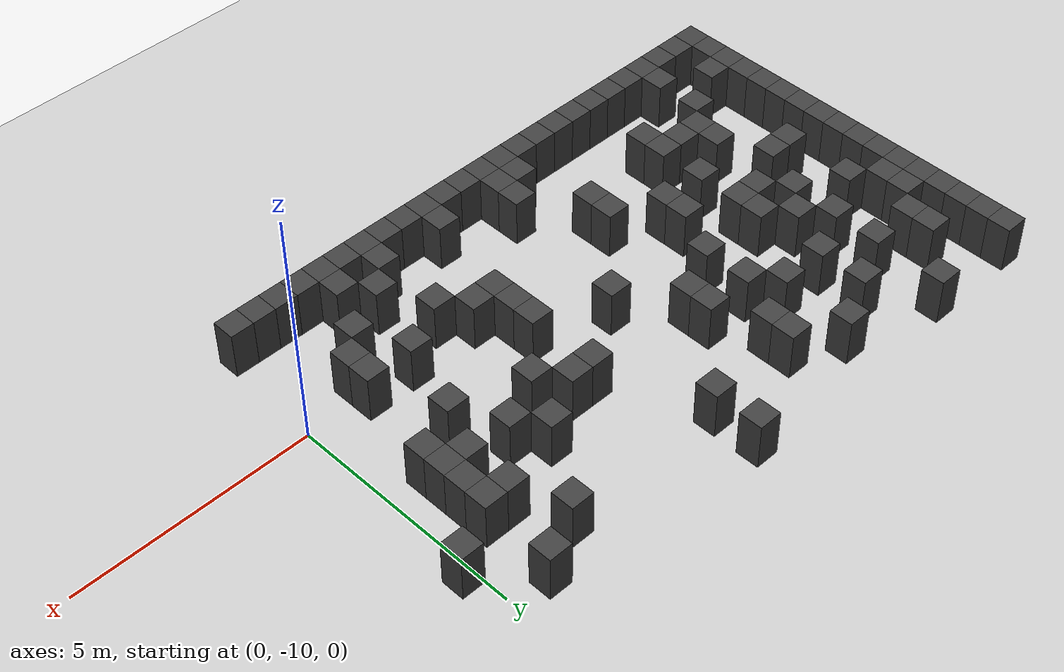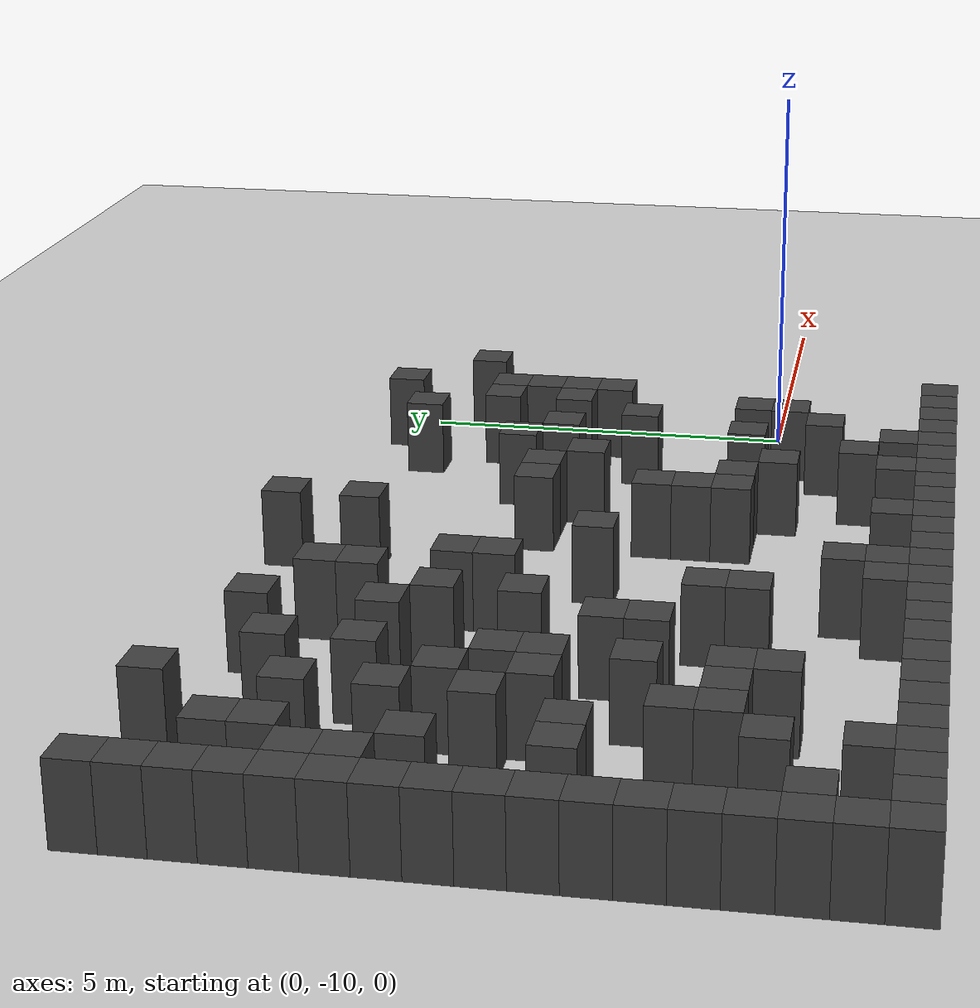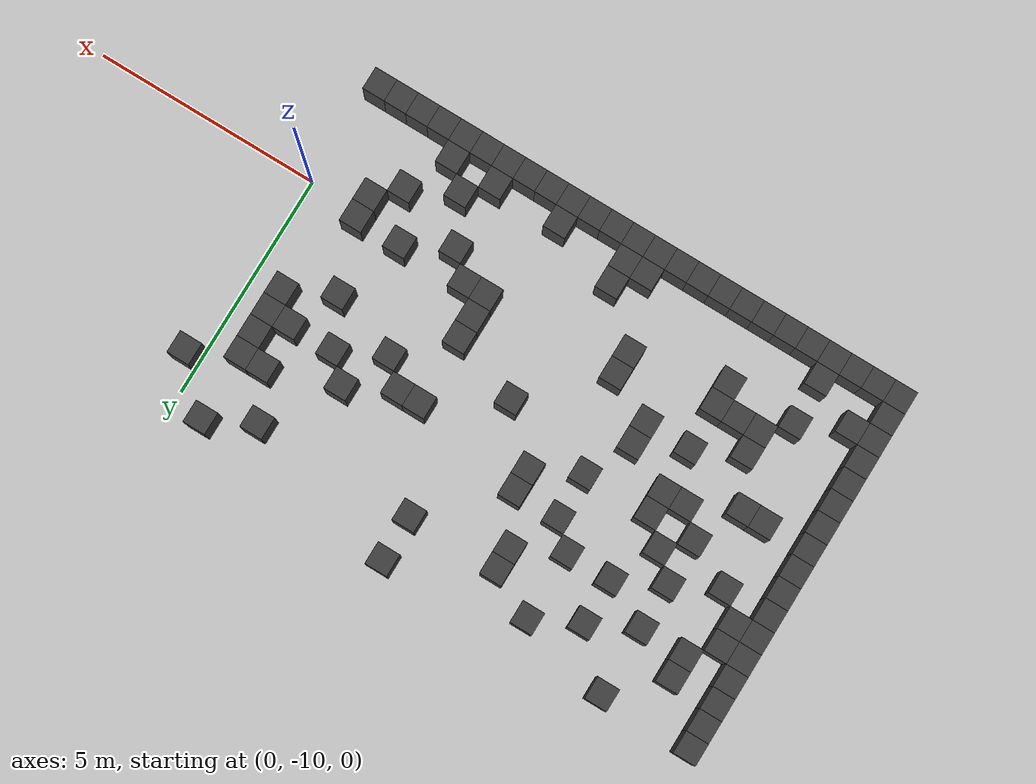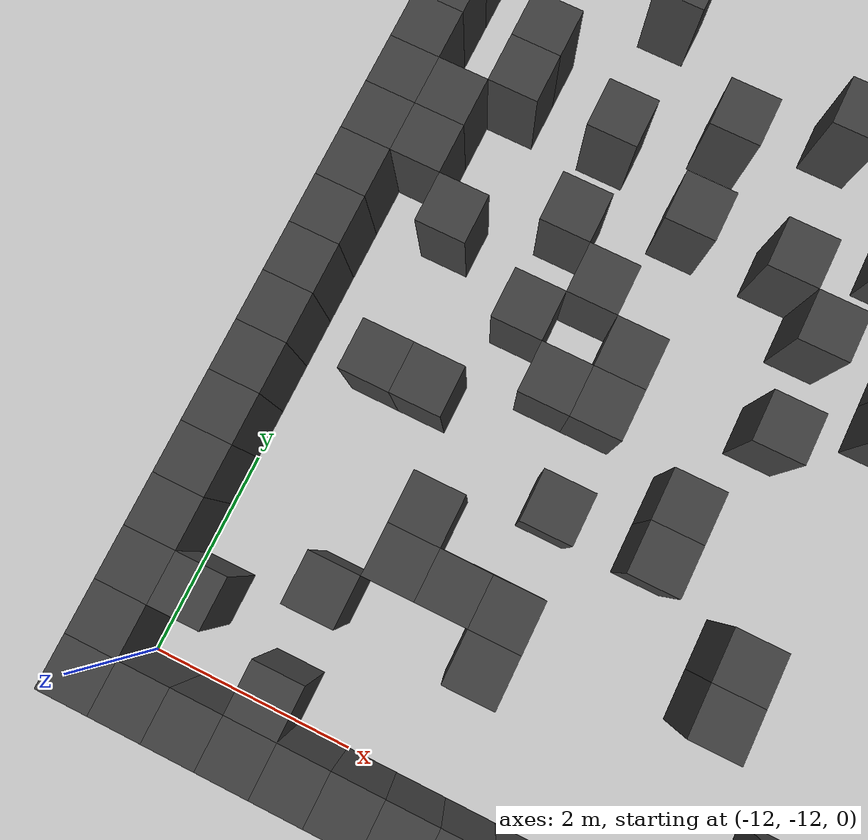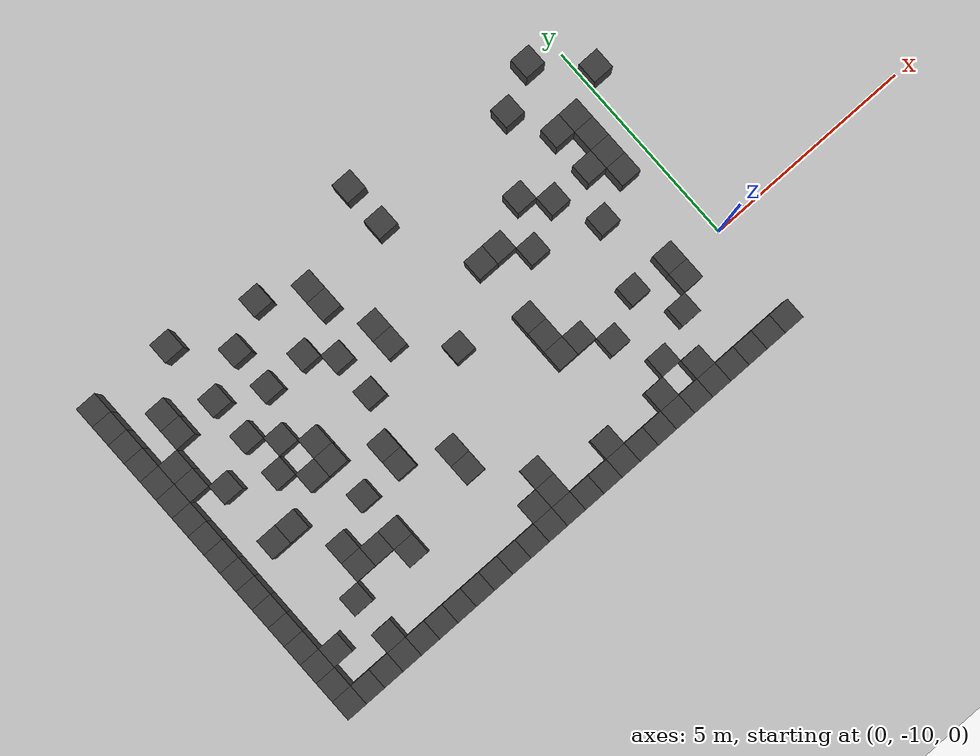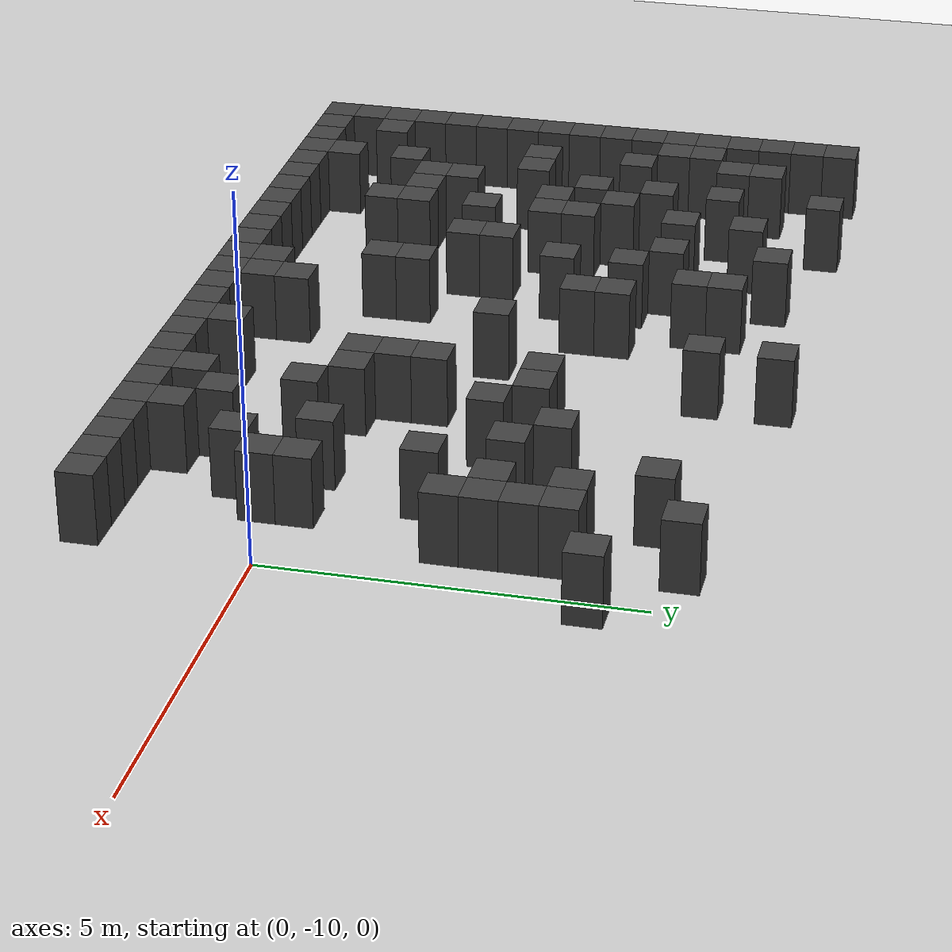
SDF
<sdf version="1.7">
 <world name="map_4390">
  <model name="ground_plane">
   <static>true</static>
   <link name="link">
    <collision name="collision">
     <geometry><plane><normal>0 0 1</normal><size>200 200</size></plane></geometry>
    </collision>
    <visual name="visual">
     <geometry><plane><normal>0 0 1</normal><size>200 200</size></plane></geometry>
     <material><ambient>0.8 0.8 0.8 1</ambient><diffuse>0.8 0.8 0.8 1</diffuse></material>
    </visual>
   </link>
  </model>
  <model name="maze_environment">
   <static>true</static>
   <link name="wall_431">
    <pose>-12.250 -4.250 0.500 0 0 0</pose>
    <collision name="col"><geometry><box><size>0.5 0.5 1.0</size></box></geometry></collision>
    <visual name="vis">
     <geometry><box><size>0.5 0.5 1.0</size></box></geometry>
     <material><ambient>0.15 0.15 0.15 1</ambient><diffuse>0.25 0.25 0.25 1</diffuse></material>
    </visual>
   </link>
   <link name="wall_432">
    <pose>-10.250 -4.250 0.500 0 0 0</pose>
    <collision name="col"><geometry><box><size>0.5 0.5 1.0</size></box></geometry></collision>
    <visual name="vis">
     <geometry><box><size>0.5 0.5 1.0</size></box></geometry>
     <material><ambient>0.15 0.15 0.15 1</ambient><diffuse>0.25 0.25 0.25 1</diffuse></material>
    </visual>
   </link>
   <link name="wall_433">
    <pose>-5.250 -4.250 0.500 0 0 0</pose>
    <collision name="col"><geometry><box><size>0.5 0.5 1.0</size></box></geometry></collision>
    <visual name="vis">
     <geometry><box><size>0.5 0.5 1.0</size></box></geometry>
     <material><ambient>0.15 0.15 0.15 1</ambient><diffuse>0.25 0.25 0.25 1</diffuse></material>
    </visual>
   </link>
   <link name="wall_446">
    <pose>-12.250 -4.750 0.500 0 0 0</pose>
    <collision name="col"><geometry><box><size>0.5 0.5 1.0</size></box></geometry></collision>
    <visual name="vis">
     <geometry><box><size>0.5 0.5 1.0</size></box></geometry>
     <material><ambient>0.15 0.15 0.15 1</ambient><diffuse>0.25 0.25 0.25 1</diffuse></material>
    </visual>
   </link>
   <link name="wall_447">
    <pose>-8.250 -4.750 0.500 0 0 0</pose>
    <collision name="col"><geometry><box><size>0.5 0.5 1.0</size></box></geometry></collision>
    <visual name="vis">
     <geometry><box><size>0.5 0.5 1.0</size></box></geometry>
     <material><ambient>0.15 0.15 0.15 1</ambient><diffuse>0.25 0.25 0.25 1</diffuse></material>
    </visual>
   </link>
   <link name="wall_448">
    <pose>-0.750 -4.750 0.500 0 0 0</pose>
    <collision name="col"><geometry><box><size>0.5 0.5 1.0</size></box></geometry></collision>
    <visual name="vis">
     <geometry><box><size>0.5 0.5 1.0</size></box></geometry>
     <material><ambient>0.15 0.15 0.15 1</ambient><diffuse>0.25 0.25 0.25 1</diffuse></material>
    </visual>
   </link>
   <link name="wall_453">
    <pose>-12.250 -5.250 0.500 0 0 0</pose>
    <collision name="col"><geometry><box><size>0.5 0.5 1.0</size></box></geometry></collision>
    <visual name="vis">
     <geometry><box><size>0.5 0.5 1.0</size></box></geometry>
     <material><ambient>0.15 0.15 0.15 1</ambient><diffuse>0.25 0.25 0.25 1</diffuse></material>
    </visual>
   </link>
   <link name="wall_454">
    <pose>-11.250 -5.250 0.500 0 0 0</pose>
    <collision name="col"><geometry><box><size>0.5 0.5 1.0</size></box></geometry></collision>
    <visual name="vis">
     <geometry><box><size>0.5 0.5 1.0</size></box></geometry>
     <material><ambient>0.15 0.15 0.15 1</ambient><diffuse>0.25 0.25 0.25 1</diffuse></material>
    </visual>
   </link>
   <link name="wall_455">
    <pose>-9.250 -5.250 0.500 0 0 0</pose>
    <collision name="col"><geometry><box><size>0.5 0.5 1.0</size></box></geometry></collision>
    <visual name="vis">
     <geometry><box><size>0.5 0.5 1.0</size></box></geometry>
     <material><ambient>0.15 0.15 0.15 1</ambient><diffuse>0.25 0.25 0.25 1</diffuse></material>
    </visual>
   </link>
   <link name="wall_456">
    <pose>-7.250 -5.250 0.500 0 0 0</pose>
    <collision name="col"><geometry><box><size>0.5 0.5 1.0</size></box></geometry></collision>
    <visual name="vis">
     <geometry><box><size>0.5 0.5 1.0</size></box></geometry>
     <material><ambient>0.15 0.15 0.15 1</ambient><diffuse>0.25 0.25 0.25 1</diffuse></material>
    </visual>
   </link>
   <link name="wall_457">
    <pose>-5.250 -5.250 0.500 0 0 0</pose>
    <collision name="col"><geometry><box><size>0.5 0.5 1.0</size></box></geometry></collision>
    <visual name="vis">
     <geometry><box><size>0.5 0.5 1.0</size></box></geometry>
     <material><ambient>0.15 0.15 0.15 1</ambient><diffuse>0.25 0.25 0.25 1</diffuse></material>
    </visual>
   </link>
   <link name="wall_458">
    <pose>-1.750 -5.250 0.500 0 0 0</pose>
    <collision name="col"><geometry><box><size>0.5 0.5 1.0</size></box></geometry></collision>
    <visual name="vis">
     <geometry><box><size>0.5 0.5 1.0</size></box></geometry>
     <material><ambient>0.15 0.15 0.15 1</ambient><diffuse>0.25 0.25 0.25 1</diffuse></material>
    </visual>
   </link>
   <link name="wall_469">
    <pose>-12.250 -5.750 0.500 0 0 0</pose>
    <collision name="col"><geometry><box><size>0.5 0.5 1.0</size></box></geometry></collision>
    <visual name="vis">
     <geometry><box><size>0.5 0.5 1.0</size></box></geometry>
     <material><ambient>0.15 0.15 0.15 1</ambient><diffuse>0.25 0.25 0.25 1</diffuse></material>
    </visual>
   </link>
   <link name="wall_470">
    <pose>-11.250 -5.750 0.500 0 0 0</pose>
    <collision name="col"><geometry><box><size>0.5 0.5 1.0</size></box></geometry></collision>
    <visual name="vis">
     <geometry><box><size>0.5 0.5 1.0</size></box></geometry>
     <material><ambient>0.15 0.15 0.15 1</ambient><diffuse>0.25 0.25 0.25 1</diffuse></material>
    </visual>
   </link>
   <link name="wall_471">
    <pose>-10.250 -5.750 0.500 0 0 0</pose>
    <collision name="col"><geometry><box><size>0.5 0.5 1.0</size></box></geometry></collision>
    <visual name="vis">
     <geometry><box><size>0.5 0.5 1.0</size></box></geometry>
     <material><ambient>0.15 0.15 0.15 1</ambient><diffuse>0.25 0.25 0.25 1</diffuse></material>
    </visual>
   </link>
   <link name="wall_472">
    <pose>-7.250 -5.750 0.500 0 0 0</pose>
    <collision name="col"><geometry><box><size>0.5 0.5 1.0</size></box></geometry></collision>
    <visual name="vis">
     <geometry><box><size>0.5 0.5 1.0</size></box></geometry>
     <material><ambient>0.15 0.15 0.15 1</ambient><diffuse>0.25 0.25 0.25 1</diffuse></material>
    </visual>
   </link>
   <link name="wall_473">
    <pose>0.250 -5.750 0.500 0 0 0</pose>
    <collision name="col"><geometry><box><size>0.5 0.5 1.0</size></box></geometry></collision>
    <visual name="vis">
     <geometry><box><size>0.5 0.5 1.0</size></box></geometry>
     <material><ambient>0.15 0.15 0.15 1</ambient><diffuse>0.25 0.25 0.25 1</diffuse></material>
    </visual>
   </link>
   <link name="wall_480">
    <pose>-12.250 -6.250 0.500 0 0 0</pose>
    <collision name="col"><geometry><box><size>0.5 0.5 1.0</size></box></geometry></collision>
    <visual name="vis">
     <geometry><box><size>0.5 0.5 1.0</size></box></geometry>
     <material><ambient>0.15 0.15 0.15 1</ambient><diffuse>0.25 0.25 0.25 1</diffuse></material>
    </visual>
   </link>
   <link name="wall_481">
    <pose>-11.750 -6.250 0.500 0 0 0</pose>
    <collision name="col"><geometry><box><size>0.5 0.5 1.0</size></box></geometry></collision>
    <visual name="vis">
     <geometry><box><size>0.5 0.5 1.0</size></box></geometry>
     <material><ambient>0.15 0.15 0.15 1</ambient><diffuse>0.25 0.25 0.25 1</diffuse></material>
    </visual>
   </link>
   <link name="wall_482">
    <pose>-9.250 -6.250 0.500 0 0 0</pose>
    <collision name="col"><geometry><box><size>0.5 0.5 1.0</size></box></geometry></collision>
    <visual name="vis">
     <geometry><box><size>0.5 0.5 1.0</size></box></geometry>
     <material><ambient>0.15 0.15 0.15 1</ambient><diffuse>0.25 0.25 0.25 1</diffuse></material>
    </visual>
   </link>
   <link name="wall_483">
    <pose>-8.250 -6.250 0.500 0 0 0</pose>
    <collision name="col"><geometry><box><size>0.5 0.5 1.0</size></box></geometry></collision>
    <visual name="vis">
     <geometry><box><size>0.5 0.5 1.0</size></box></geometry>
     <material><ambient>0.15 0.15 0.15 1</ambient><diffuse>0.25 0.25 0.25 1</diffuse></material>
    </visual>
   </link>
   <link name="wall_484">
    <pose>-1.250 -6.250 0.500 0 0 0</pose>
    <collision name="col"><geometry><box><size>0.5 0.5 1.0</size></box></geometry></collision>
    <visual name="vis">
     <geometry><box><size>0.5 0.5 1.0</size></box></geometry>
     <material><ambient>0.15 0.15 0.15 1</ambient><diffuse>0.25 0.25 0.25 1</diffuse></material>
    </visual>
   </link>
   <link name="wall_485">
    <pose>-0.750 -6.250 0.500 0 0 0</pose>
    <collision name="col"><geometry><box><size>0.5 0.5 1.0</size></box></geometry></collision>
    <visual name="vis">
     <geometry><box><size>0.5 0.5 1.0</size></box></geometry>
     <material><ambient>0.15 0.15 0.15 1</ambient><diffuse>0.25 0.25 0.25 1</diffuse></material>
    </visual>
   </link>
   <link name="wall_494">
    <pose>-12.250 -6.750 0.500 0 0 0</pose>
    <collision name="col"><geometry><box><size>0.5 0.5 1.0</size></box></geometry></collision>
    <visual name="vis">
     <geometry><box><size>0.5 0.5 1.0</size></box></geometry>
     <material><ambient>0.15 0.15 0.15 1</ambient><diffuse>0.25 0.25 0.25 1</diffuse></material>
    </visual>
   </link>
   <link name="wall_495">
    <pose>-11.750 -6.750 0.500 0 0 0</pose>
    <collision name="col"><geometry><box><size>0.5 0.5 1.0</size></box></geometry></collision>
    <visual name="vis">
     <geometry><box><size>0.5 0.5 1.0</size></box></geometry>
     <material><ambient>0.15 0.15 0.15 1</ambient><diffuse>0.25 0.25 0.25 1</diffuse></material>
    </visual>
   </link>
   <link name="wall_496">
    <pose>-10.250 -6.750 0.500 0 0 0</pose>
    <collision name="col"><geometry><box><size>0.5 0.5 1.0</size></box></geometry></collision>
    <visual name="vis">
     <geometry><box><size>0.5 0.5 1.0</size></box></geometry>
     <material><ambient>0.15 0.15 0.15 1</ambient><diffuse>0.25 0.25 0.25 1</diffuse></material>
    </visual>
   </link>
   <link name="wall_497">
    <pose>-7.750 -6.750 0.500 0 0 0</pose>
    <collision name="col"><geometry><box><size>0.5 0.5 1.0</size></box></geometry></collision>
    <visual name="vis">
     <geometry><box><size>0.5 0.5 1.0</size></box></geometry>
     <material><ambient>0.15 0.15 0.15 1</ambient><diffuse>0.25 0.25 0.25 1</diffuse></material>
    </visual>
   </link>
   <link name="wall_498">
    <pose>-6.750 -6.750 0.500 0 0 0</pose>
    <collision name="col"><geometry><box><size>0.5 0.5 1.0</size></box></geometry></collision>
    <visual name="vis">
     <geometry><box><size>0.5 0.5 1.0</size></box></geometry>
     <material><ambient>0.15 0.15 0.15 1</ambient><diffuse>0.25 0.25 0.25 1</diffuse></material>
    </visual>
   </link>
   <link name="wall_499">
    <pose>-2.750 -6.750 0.500 0 0 0</pose>
    <collision name="col"><geometry><box><size>0.5 0.5 1.0</size></box></geometry></collision>
    <visual name="vis">
     <geometry><box><size>0.5 0.5 1.0</size></box></geometry>
     <material><ambient>0.15 0.15 0.15 1</ambient><diffuse>0.25 0.25 0.25 1</diffuse></material>
    </visual>
   </link>
   <link name="wall_500">
    <pose>-0.750 -6.750 0.500 0 0 0</pose>
    <collision name="col"><geometry><box><size>0.5 0.5 1.0</size></box></geometry></collision>
    <visual name="vis">
     <geometry><box><size>0.5 0.5 1.0</size></box></geometry>
     <material><ambient>0.15 0.15 0.15 1</ambient><diffuse>0.25 0.25 0.25 1</diffuse></material>
    </visual>
   </link>
   <link name="wall_507">
    <pose>-12.250 -7.250 0.500 0 0 0</pose>
    <collision name="col"><geometry><box><size>0.5 0.5 1.0</size></box></geometry></collision>
    <visual name="vis">
     <geometry><box><size>0.5 0.5 1.0</size></box></geometry>
     <material><ambient>0.15 0.15 0.15 1</ambient><diffuse>0.25 0.25 0.25 1</diffuse></material>
    </visual>
   </link>
   <link name="wall_508">
    <pose>-11.250 -7.250 0.500 0 0 0</pose>
    <collision name="col"><geometry><box><size>0.5 0.5 1.0</size></box></geometry></collision>
    <visual name="vis">
     <geometry><box><size>0.5 0.5 1.0</size></box></geometry>
     <material><ambient>0.15 0.15 0.15 1</ambient><diffuse>0.25 0.25 0.25 1</diffuse></material>
    </visual>
   </link>
   <link name="wall_509">
    <pose>-9.750 -7.250 0.500 0 0 0</pose>
    <collision name="col"><geometry><box><size>0.5 0.5 1.0</size></box></geometry></collision>
    <visual name="vis">
     <geometry><box><size>0.5 0.5 1.0</size></box></geometry>
     <material><ambient>0.15 0.15 0.15 1</ambient><diffuse>0.25 0.25 0.25 1</diffuse></material>
    </visual>
   </link>
   <link name="wall_510">
    <pose>-6.750 -7.250 0.500 0 0 0</pose>
    <collision name="col"><geometry><box><size>0.5 0.5 1.0</size></box></geometry></collision>
    <visual name="vis">
     <geometry><box><size>0.5 0.5 1.0</size></box></geometry>
     <material><ambient>0.15 0.15 0.15 1</ambient><diffuse>0.25 0.25 0.25 1</diffuse></material>
    </visual>
   </link>
   <link name="wall_511">
    <pose>-4.250 -7.250 0.500 0 0 0</pose>
    <collision name="col"><geometry><box><size>0.5 0.5 1.0</size></box></geometry></collision>
    <visual name="vis">
     <geometry><box><size>0.5 0.5 1.0</size></box></geometry>
     <material><ambient>0.15 0.15 0.15 1</ambient><diffuse>0.25 0.25 0.25 1</diffuse></material>
    </visual>
   </link>
   <link name="wall_512">
    <pose>-3.750 -7.250 0.500 0 0 0</pose>
    <collision name="col"><geometry><box><size>0.5 0.5 1.0</size></box></geometry></collision>
    <visual name="vis">
     <geometry><box><size>0.5 0.5 1.0</size></box></geometry>
     <material><ambient>0.15 0.15 0.15 1</ambient><diffuse>0.25 0.25 0.25 1</diffuse></material>
    </visual>
   </link>
   <link name="wall_513">
    <pose>-2.250 -7.250 0.500 0 0 0</pose>
    <collision name="col"><geometry><box><size>0.5 0.5 1.0</size></box></geometry></collision>
    <visual name="vis">
     <geometry><box><size>0.5 0.5 1.0</size></box></geometry>
     <material><ambient>0.15 0.15 0.15 1</ambient><diffuse>0.25 0.25 0.25 1</diffuse></material>
    </visual>
   </link>
   <link name="wall_514">
    <pose>-1.250 -7.250 0.500 0 0 0</pose>
    <collision name="col"><geometry><box><size>0.5 0.5 1.0</size></box></geometry></collision>
    <visual name="vis">
     <geometry><box><size>0.5 0.5 1.0</size></box></geometry>
     <material><ambient>0.15 0.15 0.15 1</ambient><diffuse>0.25 0.25 0.25 1</diffuse></material>
    </visual>
   </link>
   <link name="wall_515">
    <pose>-0.750 -7.250 0.500 0 0 0</pose>
    <collision name="col"><geometry><box><size>0.5 0.5 1.0</size></box></geometry></collision>
    <visual name="vis">
     <geometry><box><size>0.5 0.5 1.0</size></box></geometry>
     <material><ambient>0.15 0.15 0.15 1</ambient><diffuse>0.25 0.25 0.25 1</diffuse></material>
    </visual>
   </link>
   <link name="wall_524">
    <pose>-12.250 -7.750 0.500 0 0 0</pose>
    <collision name="col"><geometry><box><size>0.5 0.5 1.0</size></box></geometry></collision>
    <visual name="vis">
     <geometry><box><size>0.5 0.5 1.0</size></box></geometry>
     <material><ambient>0.15 0.15 0.15 1</ambient><diffuse>0.25 0.25 0.25 1</diffuse></material>
    </visual>
   </link>
   <link name="wall_525">
    <pose>-10.250 -7.750 0.500 0 0 0</pose>
    <collision name="col"><geometry><box><size>0.5 0.5 1.0</size></box></geometry></collision>
    <visual name="vis">
     <geometry><box><size>0.5 0.5 1.0</size></box></geometry>
     <material><ambient>0.15 0.15 0.15 1</ambient><diffuse>0.25 0.25 0.25 1</diffuse></material>
    </visual>
   </link>
   <link name="wall_526">
    <pose>-9.250 -7.750 0.500 0 0 0</pose>
    <collision name="col"><geometry><box><size>0.5 0.5 1.0</size></box></geometry></collision>
    <visual name="vis">
     <geometry><box><size>0.5 0.5 1.0</size></box></geometry>
     <material><ambient>0.15 0.15 0.15 1</ambient><diffuse>0.25 0.25 0.25 1</diffuse></material>
    </visual>
   </link>
   <link name="wall_527">
    <pose>-7.750 -7.750 0.500 0 0 0</pose>
    <collision name="col"><geometry><box><size>0.5 0.5 1.0</size></box></geometry></collision>
    <visual name="vis">
     <geometry><box><size>0.5 0.5 1.0</size></box></geometry>
     <material><ambient>0.15 0.15 0.15 1</ambient><diffuse>0.25 0.25 0.25 1</diffuse></material>
    </visual>
   </link>
   <link name="wall_528">
    <pose>-3.250 -7.750 0.500 0 0 0</pose>
    <collision name="col"><geometry><box><size>0.5 0.5 1.0</size></box></geometry></collision>
    <visual name="vis">
     <geometry><box><size>0.5 0.5 1.0</size></box></geometry>
     <material><ambient>0.15 0.15 0.15 1</ambient><diffuse>0.25 0.25 0.25 1</diffuse></material>
    </visual>
   </link>
   <link name="wall_529">
    <pose>-0.750 -7.750 0.500 0 0 0</pose>
    <collision name="col"><geometry><box><size>0.5 0.5 1.0</size></box></geometry></collision>
    <visual name="vis">
     <geometry><box><size>0.5 0.5 1.0</size></box></geometry>
     <material><ambient>0.15 0.15 0.15 1</ambient><diffuse>0.25 0.25 0.25 1</diffuse></material>
    </visual>
   </link>
   <link name="wall_537">
    <pose>-12.250 -8.250 0.500 0 0 0</pose>
    <collision name="col"><geometry><box><size>0.5 0.5 1.0</size></box></geometry></collision>
    <visual name="vis">
     <geometry><box><size>0.5 0.5 1.0</size></box></geometry>
     <material><ambient>0.15 0.15 0.15 1</ambient><diffuse>0.25 0.25 0.25 1</diffuse></material>
    </visual>
   </link>
   <link name="wall_538">
    <pose>-9.750 -8.250 0.500 0 0 0</pose>
    <collision name="col"><geometry><box><size>0.5 0.5 1.0</size></box></geometry></collision>
    <visual name="vis">
     <geometry><box><size>0.5 0.5 1.0</size></box></geometry>
     <material><ambient>0.15 0.15 0.15 1</ambient><diffuse>0.25 0.25 0.25 1</diffuse></material>
    </visual>
   </link>
   <link name="wall_539">
    <pose>-9.250 -8.250 0.500 0 0 0</pose>
    <collision name="col"><geometry><box><size>0.5 0.5 1.0</size></box></geometry></collision>
    <visual name="vis">
     <geometry><box><size>0.5 0.5 1.0</size></box></geometry>
     <material><ambient>0.15 0.15 0.15 1</ambient><diffuse>0.25 0.25 0.25 1</diffuse></material>
    </visual>
   </link>
   <link name="wall_540">
    <pose>-5.750 -8.250 0.500 0 0 0</pose>
    <collision name="col"><geometry><box><size>0.5 0.5 1.0</size></box></geometry></collision>
    <visual name="vis">
     <geometry><box><size>0.5 0.5 1.0</size></box></geometry>
     <material><ambient>0.15 0.15 0.15 1</ambient><diffuse>0.25 0.25 0.25 1</diffuse></material>
    </visual>
   </link>
   <link name="wall_541">
    <pose>-1.750 -8.250 0.500 0 0 0</pose>
    <collision name="col"><geometry><box><size>0.5 0.5 1.0</size></box></geometry></collision>
    <visual name="vis">
     <geometry><box><size>0.5 0.5 1.0</size></box></geometry>
     <material><ambient>0.15 0.15 0.15 1</ambient><diffuse>0.25 0.25 0.25 1</diffuse></material>
    </visual>
   </link>
   <link name="wall_547">
    <pose>-12.250 -8.750 0.500 0 0 0</pose>
    <collision name="col"><geometry><box><size>0.5 0.5 1.0</size></box></geometry></collision>
    <visual name="vis">
     <geometry><box><size>0.5 0.5 1.0</size></box></geometry>
     <material><ambient>0.15 0.15 0.15 1</ambient><diffuse>0.25 0.25 0.25 1</diffuse></material>
    </visual>
   </link>
   <link name="wall_548">
    <pose>-11.250 -8.750 0.500 0 0 0</pose>
    <collision name="col"><geometry><box><size>0.5 0.5 1.0</size></box></geometry></collision>
    <visual name="vis">
     <geometry><box><size>0.5 0.5 1.0</size></box></geometry>
     <material><ambient>0.15 0.15 0.15 1</ambient><diffuse>0.25 0.25 0.25 1</diffuse></material>
    </visual>
   </link>
   <link name="wall_549">
    <pose>-10.750 -8.750 0.500 0 0 0</pose>
    <collision name="col"><geometry><box><size>0.5 0.5 1.0</size></box></geometry></collision>
    <visual name="vis">
     <geometry><box><size>0.5 0.5 1.0</size></box></geometry>
     <material><ambient>0.15 0.15 0.15 1</ambient><diffuse>0.25 0.25 0.25 1</diffuse></material>
    </visual>
   </link>
   <link name="wall_550">
    <pose>-8.250 -8.750 0.500 0 0 0</pose>
    <collision name="col"><geometry><box><size>0.5 0.5 1.0</size></box></geometry></collision>
    <visual name="vis">
     <geometry><box><size>0.5 0.5 1.0</size></box></geometry>
     <material><ambient>0.15 0.15 0.15 1</ambient><diffuse>0.25 0.25 0.25 1</diffuse></material>
    </visual>
   </link>
   <link name="wall_551">
    <pose>-4.250 -8.750 0.500 0 0 0</pose>
    <collision name="col"><geometry><box><size>0.5 0.5 1.0</size></box></geometry></collision>
    <visual name="vis">
     <geometry><box><size>0.5 0.5 1.0</size></box></geometry>
     <material><ambient>0.15 0.15 0.15 1</ambient><diffuse>0.25 0.25 0.25 1</diffuse></material>
    </visual>
   </link>
   <link name="wall_556">
    <pose>-12.250 -9.250 0.500 0 0 0</pose>
    <collision name="col"><geometry><box><size>0.5 0.5 1.0</size></box></geometry></collision>
    <visual name="vis">
     <geometry><box><size>0.5 0.5 1.0</size></box></geometry>
     <material><ambient>0.15 0.15 0.15 1</ambient><diffuse>0.25 0.25 0.25 1</diffuse></material>
    </visual>
   </link>
   <link name="wall_557">
    <pose>-9.250 -9.250 0.500 0 0 0</pose>
    <collision name="col"><geometry><box><size>0.5 0.5 1.0</size></box></geometry></collision>
    <visual name="vis">
     <geometry><box><size>0.5 0.5 1.0</size></box></geometry>
     <material><ambient>0.15 0.15 0.15 1</ambient><diffuse>0.25 0.25 0.25 1</diffuse></material>
    </visual>
   </link>
   <link name="wall_558">
    <pose>-8.250 -9.250 0.500 0 0 0</pose>
    <collision name="col"><geometry><box><size>0.5 0.5 1.0</size></box></geometry></collision>
    <visual name="vis">
     <geometry><box><size>0.5 0.5 1.0</size></box></geometry>
     <material><ambient>0.15 0.15 0.15 1</ambient><diffuse>0.25 0.25 0.25 1</diffuse></material>
    </visual>
   </link>
   <link name="wall_559">
    <pose>-4.250 -9.250 0.500 0 0 0</pose>
    <collision name="col"><geometry><box><size>0.5 0.5 1.0</size></box></geometry></collision>
    <visual name="vis">
     <geometry><box><size>0.5 0.5 1.0</size></box></geometry>
     <material><ambient>0.15 0.15 0.15 1</ambient><diffuse>0.25 0.25 0.25 1</diffuse></material>
    </visual>
   </link>
   <link name="wall_566">
    <pose>-12.250 -9.750 0.500 0 0 0</pose>
    <collision name="col"><geometry><box><size>0.5 0.5 1.0</size></box></geometry></collision>
    <visual name="vis">
     <geometry><box><size>0.5 0.5 1.0</size></box></geometry>
     <material><ambient>0.15 0.15 0.15 1</ambient><diffuse>0.25 0.25 0.25 1</diffuse></material>
    </visual>
   </link>
   <link name="wall_567">
    <pose>-10.250 -9.750 0.500 0 0 0</pose>
    <collision name="col"><geometry><box><size>0.5 0.5 1.0</size></box></geometry></collision>
    <visual name="vis">
     <geometry><box><size>0.5 0.5 1.0</size></box></geometry>
     <material><ambient>0.15 0.15 0.15 1</ambient><diffuse>0.25 0.25 0.25 1</diffuse></material>
    </visual>
   </link>
   <link name="wall_568">
    <pose>-7.250 -9.750 0.500 0 0 0</pose>
    <collision name="col"><geometry><box><size>0.5 0.5 1.0</size></box></geometry></collision>
    <visual name="vis">
     <geometry><box><size>0.5 0.5 1.0</size></box></geometry>
     <material><ambient>0.15 0.15 0.15 1</ambient><diffuse>0.25 0.25 0.25 1</diffuse></material>
    </visual>
   </link>
   <link name="wall_569">
    <pose>-4.250 -9.750 0.500 0 0 0</pose>
    <collision name="col"><geometry><box><size>0.5 0.5 1.0</size></box></geometry></collision>
    <visual name="vis">
     <geometry><box><size>0.5 0.5 1.0</size></box></geometry>
     <material><ambient>0.15 0.15 0.15 1</ambient><diffuse>0.25 0.25 0.25 1</diffuse></material>
    </visual>
   </link>
   <link name="wall_570">
    <pose>-3.750 -9.750 0.500 0 0 0</pose>
    <collision name="col"><geometry><box><size>0.5 0.5 1.0</size></box></geometry></collision>
    <visual name="vis">
     <geometry><box><size>0.5 0.5 1.0</size></box></geometry>
     <material><ambient>0.15 0.15 0.15 1</ambient><diffuse>0.25 0.25 0.25 1</diffuse></material>
    </visual>
   </link>
   <link name="wall_571">
    <pose>-2.250 -9.750 0.500 0 0 0</pose>
    <collision name="col"><geometry><box><size>0.5 0.5 1.0</size></box></geometry></collision>
    <visual name="vis">
     <geometry><box><size>0.5 0.5 1.0</size></box></geometry>
     <material><ambient>0.15 0.15 0.15 1</ambient><diffuse>0.25 0.25 0.25 1</diffuse></material>
    </visual>
   </link>
   <link name="wall_572">
    <pose>-1.250 -9.750 0.500 0 0 0</pose>
    <collision name="col"><geometry><box><size>0.5 0.5 1.0</size></box></geometry></collision>
    <visual name="vis">
     <geometry><box><size>0.5 0.5 1.0</size></box></geometry>
     <material><ambient>0.15 0.15 0.15 1</ambient><diffuse>0.25 0.25 0.25 1</diffuse></material>
    </visual>
   </link>
   <link name="wall_580">
    <pose>-12.250 -10.250 0.500 0 0 0</pose>
    <collision name="col"><geometry><box><size>0.5 0.5 1.0</size></box></geometry></collision>
    <visual name="vis">
     <geometry><box><size>0.5 0.5 1.0</size></box></geometry>
     <material><ambient>0.15 0.15 0.15 1</ambient><diffuse>0.25 0.25 0.25 1</diffuse></material>
    </visual>
   </link>
   <link name="wall_581">
    <pose>-10.250 -10.250 0.500 0 0 0</pose>
    <collision name="col"><geometry><box><size>0.5 0.5 1.0</size></box></geometry></collision>
    <visual name="vis">
     <geometry><box><size>0.5 0.5 1.0</size></box></geometry>
     <material><ambient>0.15 0.15 0.15 1</ambient><diffuse>0.25 0.25 0.25 1</diffuse></material>
    </visual>
   </link>
   <link name="wall_582">
    <pose>-9.750 -10.250 0.500 0 0 0</pose>
    <collision name="col"><geometry><box><size>0.5 0.5 1.0</size></box></geometry></collision>
    <visual name="vis">
     <geometry><box><size>0.5 0.5 1.0</size></box></geometry>
     <material><ambient>0.15 0.15 0.15 1</ambient><diffuse>0.25 0.25 0.25 1</diffuse></material>
    </visual>
   </link>
   <link name="wall_583">
    <pose>-9.250 -10.250 0.500 0 0 0</pose>
    <collision name="col"><geometry><box><size>0.5 0.5 1.0</size></box></geometry></collision>
    <visual name="vis">
     <geometry><box><size>0.5 0.5 1.0</size></box></geometry>
     <material><ambient>0.15 0.15 0.15 1</ambient><diffuse>0.25 0.25 0.25 1</diffuse></material>
    </visual>
   </link>
   <link name="wall_584">
    <pose>-7.250 -10.250 0.500 0 0 0</pose>
    <collision name="col"><geometry><box><size>0.5 0.5 1.0</size></box></geometry></collision>
    <visual name="vis">
     <geometry><box><size>0.5 0.5 1.0</size></box></geometry>
     <material><ambient>0.15 0.15 0.15 1</ambient><diffuse>0.25 0.25 0.25 1</diffuse></material>
    </visual>
   </link>
   <link name="wall_585">
    <pose>-3.250 -10.250 0.500 0 0 0</pose>
    <collision name="col"><geometry><box><size>0.5 0.5 1.0</size></box></geometry></collision>
    <visual name="vis">
     <geometry><box><size>0.5 0.5 1.0</size></box></geometry>
     <material><ambient>0.15 0.15 0.15 1</ambient><diffuse>0.25 0.25 0.25 1</diffuse></material>
    </visual>
   </link>
   <link name="wall_586">
    <pose>-1.250 -10.250 0.500 0 0 0</pose>
    <collision name="col"><geometry><box><size>0.5 0.5 1.0</size></box></geometry></collision>
    <visual name="vis">
     <geometry><box><size>0.5 0.5 1.0</size></box></geometry>
     <material><ambient>0.15 0.15 0.15 1</ambient><diffuse>0.25 0.25 0.25 1</diffuse></material>
    </visual>
   </link>
   <link name="wall_597">
    <pose>-12.250 -10.750 0.500 0 0 0</pose>
    <collision name="col"><geometry><box><size>0.5 0.5 1.0</size></box></geometry></collision>
    <visual name="vis">
     <geometry><box><size>0.5 0.5 1.0</size></box></geometry>
     <material><ambient>0.15 0.15 0.15 1</ambient><diffuse>0.25 0.25 0.25 1</diffuse></material>
    </visual>
   </link>
   <link name="wall_598">
    <pose>-10.750 -10.750 0.500 0 0 0</pose>
    <collision name="col"><geometry><box><size>0.5 0.5 1.0</size></box></geometry></collision>
    <visual name="vis">
     <geometry><box><size>0.5 0.5 1.0</size></box></geometry>
     <material><ambient>0.15 0.15 0.15 1</ambient><diffuse>0.25 0.25 0.25 1</diffuse></material>
    </visual>
   </link>
   <link name="wall_599">
    <pose>-9.250 -10.750 0.500 0 0 0</pose>
    <collision name="col"><geometry><box><size>0.5 0.5 1.0</size></box></geometry></collision>
    <visual name="vis">
     <geometry><box><size>0.5 0.5 1.0</size></box></geometry>
     <material><ambient>0.15 0.15 0.15 1</ambient><diffuse>0.25 0.25 0.25 1</diffuse></material>
    </visual>
   </link>
   <link name="wall_600">
    <pose>-1.750 -10.750 0.500 0 0 0</pose>
    <collision name="col"><geometry><box><size>0.5 0.5 1.0</size></box></geometry></collision>
    <visual name="vis">
     <geometry><box><size>0.5 0.5 1.0</size></box></geometry>
     <material><ambient>0.15 0.15 0.15 1</ambient><diffuse>0.25 0.25 0.25 1</diffuse></material>
    </visual>
   </link>
   <link name="wall_608">
    <pose>-12.250 -11.250 0.500 0 0 0</pose>
    <collision name="col"><geometry><box><size>0.5 0.5 1.0</size></box></geometry></collision>
    <visual name="vis">
     <geometry><box><size>0.5 0.5 1.0</size></box></geometry>
     <material><ambient>0.15 0.15 0.15 1</ambient><diffuse>0.25 0.25 0.25 1</diffuse></material>
    </visual>
   </link>
   <link name="wall_609">
    <pose>-11.750 -11.250 0.500 0 0 0</pose>
    <collision name="col"><geometry><box><size>0.5 0.5 1.0</size></box></geometry></collision>
    <visual name="vis">
     <geometry><box><size>0.5 0.5 1.0</size></box></geometry>
     <material><ambient>0.15 0.15 0.15 1</ambient><diffuse>0.25 0.25 0.25 1</diffuse></material>
    </visual>
   </link>
   <link name="wall_610">
    <pose>-6.250 -11.250 0.500 0 0 0</pose>
    <collision name="col"><geometry><box><size>0.5 0.5 1.0</size></box></geometry></collision>
    <visual name="vis">
     <geometry><box><size>0.5 0.5 1.0</size></box></geometry>
     <material><ambient>0.15 0.15 0.15 1</ambient><diffuse>0.25 0.25 0.25 1</diffuse></material>
    </visual>
   </link>
   <link name="wall_611">
    <pose>-2.750 -11.250 0.500 0 0 0</pose>
    <collision name="col"><geometry><box><size>0.5 0.5 1.0</size></box></geometry></collision>
    <visual name="vis">
     <geometry><box><size>0.5 0.5 1.0</size></box></geometry>
     <material><ambient>0.15 0.15 0.15 1</ambient><diffuse>0.25 0.25 0.25 1</diffuse></material>
    </visual>
   </link>
   <link name="wall_619">
    <pose>-12.250 -11.750 0.500 0 0 0</pose>
    <collision name="col"><geometry><box><size>0.5 0.5 1.0</size></box></geometry></collision>
    <visual name="vis">
     <geometry><box><size>0.5 0.5 1.0</size></box></geometry>
     <material><ambient>0.15 0.15 0.15 1</ambient><diffuse>0.25 0.25 0.25 1</diffuse></material>
    </visual>
   </link>
   <link name="wall_620">
    <pose>-10.750 -11.750 0.500 0 0 0</pose>
    <collision name="col"><geometry><box><size>0.5 0.5 1.0</size></box></geometry></collision>
    <visual name="vis">
     <geometry><box><size>0.5 0.5 1.0</size></box></geometry>
     <material><ambient>0.15 0.15 0.15 1</ambient><diffuse>0.25 0.25 0.25 1</diffuse></material>
    </visual>
   </link>
   <link name="wall_621">
    <pose>-6.750 -11.750 0.500 0 0 0</pose>
    <collision name="col"><geometry><box><size>0.5 0.5 1.0</size></box></geometry></collision>
    <visual name="vis">
     <geometry><box><size>0.5 0.5 1.0</size></box></geometry>
     <material><ambient>0.15 0.15 0.15 1</ambient><diffuse>0.25 0.25 0.25 1</diffuse></material>
    </visual>
   </link>
   <link name="wall_622">
    <pose>-6.250 -11.750 0.500 0 0 0</pose>
    <collision name="col"><geometry><box><size>0.5 0.5 1.0</size></box></geometry></collision>
    <visual name="vis">
     <geometry><box><size>0.5 0.5 1.0</size></box></geometry>
     <material><ambient>0.15 0.15 0.15 1</ambient><diffuse>0.25 0.25 0.25 1</diffuse></material>
    </visual>
   </link>
   <link name="wall_623">
    <pose>-4.750 -11.750 0.500 0 0 0</pose>
    <collision name="col"><geometry><box><size>0.5 0.5 1.0</size></box></geometry></collision>
    <visual name="vis">
     <geometry><box><size>0.5 0.5 1.0</size></box></geometry>
     <material><ambient>0.15 0.15 0.15 1</ambient><diffuse>0.25 0.25 0.25 1</diffuse></material>
    </visual>
   </link>
   <link name="wall_624">
    <pose>-3.250 -11.750 0.500 0 0 0</pose>
    <collision name="col"><geometry><box><size>0.5 0.5 1.0</size></box></geometry></collision>
    <visual name="vis">
     <geometry><box><size>0.5 0.5 1.0</size></box></geometry>
     <material><ambient>0.15 0.15 0.15 1</ambient><diffuse>0.25 0.25 0.25 1</diffuse></material>
    </visual>
   </link>
   <link name="wall_625">
    <pose>-2.250 -11.750 0.500 0 0 0</pose>
    <collision name="col"><geometry><box><size>0.5 0.5 1.0</size></box></geometry></collision>
    <visual name="vis">
     <geometry><box><size>0.5 0.5 1.0</size></box></geometry>
     <material><ambient>0.15 0.15 0.15 1</ambient><diffuse>0.25 0.25 0.25 1</diffuse></material>
    </visual>
   </link>
   <link name="wall_631">
    <pose>-12.250 -12.250 0.500 0 0 0</pose>
    <collision name="col"><geometry><box><size>0.5 0.5 1.0</size></box></geometry></collision>
    <visual name="vis">
     <geometry><box><size>0.5 0.5 1.0</size></box></geometry>
     <material><ambient>0.15 0.15 0.15 1</ambient><diffuse>0.25 0.25 0.25 1</diffuse></material>
    </visual>
   </link>
   <link name="wall_632">
    <pose>-11.750 -12.250 0.500 0 0 0</pose>
    <collision name="col"><geometry><box><size>0.5 0.5 1.0</size></box></geometry></collision>
    <visual name="vis">
     <geometry><box><size>0.5 0.5 1.0</size></box></geometry>
     <material><ambient>0.15 0.15 0.15 1</ambient><diffuse>0.25 0.25 0.25 1</diffuse></material>
    </visual>
   </link>
   <link name="wall_633">
    <pose>-11.250 -12.250 0.500 0 0 0</pose>
    <collision name="col"><geometry><box><size>0.5 0.5 1.0</size></box></geometry></collision>
    <visual name="vis">
     <geometry><box><size>0.5 0.5 1.0</size></box></geometry>
     <material><ambient>0.15 0.15 0.15 1</ambient><diffuse>0.25 0.25 0.25 1</diffuse></material>
    </visual>
   </link>
   <link name="wall_634">
    <pose>-10.750 -12.250 0.500 0 0 0</pose>
    <collision name="col"><geometry><box><size>0.5 0.5 1.0</size></box></geometry></collision>
    <visual name="vis">
     <geometry><box><size>0.5 0.5 1.0</size></box></geometry>
     <material><ambient>0.15 0.15 0.15 1</ambient><diffuse>0.25 0.25 0.25 1</diffuse></material>
    </visual>
   </link>
   <link name="wall_635">
    <pose>-10.250 -12.250 0.500 0 0 0</pose>
    <collision name="col"><geometry><box><size>0.5 0.5 1.0</size></box></geometry></collision>
    <visual name="vis">
     <geometry><box><size>0.5 0.5 1.0</size></box></geometry>
     <material><ambient>0.15 0.15 0.15 1</ambient><diffuse>0.25 0.25 0.25 1</diffuse></material>
    </visual>
   </link>
   <link name="wall_636">
    <pose>-9.750 -12.250 0.500 0 0 0</pose>
    <collision name="col"><geometry><box><size>0.5 0.5 1.0</size></box></geometry></collision>
    <visual name="vis">
     <geometry><box><size>0.5 0.5 1.0</size></box></geometry>
     <material><ambient>0.15 0.15 0.15 1</ambient><diffuse>0.25 0.25 0.25 1</diffuse></material>
    </visual>
   </link>
   <link name="wall_637">
    <pose>-9.250 -12.250 0.500 0 0 0</pose>
    <collision name="col"><geometry><box><size>0.5 0.5 1.0</size></box></geometry></collision>
    <visual name="vis">
     <geometry><box><size>0.5 0.5 1.0</size></box></geometry>
     <material><ambient>0.15 0.15 0.15 1</ambient><diffuse>0.25 0.25 0.25 1</diffuse></material>
    </visual>
   </link>
   <link name="wall_638">
    <pose>-8.750 -12.250 0.500 0 0 0</pose>
    <collision name="col"><geometry><box><size>0.5 0.5 1.0</size></box></geometry></collision>
    <visual name="vis">
     <geometry><box><size>0.5 0.5 1.0</size></box></geometry>
     <material><ambient>0.15 0.15 0.15 1</ambient><diffuse>0.25 0.25 0.25 1</diffuse></material>
    </visual>
   </link>
   <link name="wall_639">
    <pose>-8.250 -12.250 0.500 0 0 0</pose>
    <collision name="col"><geometry><box><size>0.5 0.5 1.0</size></box></geometry></collision>
    <visual name="vis">
     <geometry><box><size>0.5 0.5 1.0</size></box></geometry>
     <material><ambient>0.15 0.15 0.15 1</ambient><diffuse>0.25 0.25 0.25 1</diffuse></material>
    </visual>
   </link>
   <link name="wall_640">
    <pose>-7.750 -12.250 0.500 0 0 0</pose>
    <collision name="col"><geometry><box><size>0.5 0.5 1.0</size></box></geometry></collision>
    <visual name="vis">
     <geometry><box><size>0.5 0.5 1.0</size></box></geometry>
     <material><ambient>0.15 0.15 0.15 1</ambient><diffuse>0.25 0.25 0.25 1</diffuse></material>
    </visual>
   </link>
   <link name="wall_641">
    <pose>-7.250 -12.250 0.500 0 0 0</pose>
    <collision name="col"><geometry><box><size>0.5 0.5 1.0</size></box></geometry></collision>
    <visual name="vis">
     <geometry><box><size>0.5 0.5 1.0</size></box></geometry>
     <material><ambient>0.15 0.15 0.15 1</ambient><diffuse>0.25 0.25 0.25 1</diffuse></material>
    </visual>
   </link>
   <link name="wall_642">
    <pose>-6.750 -12.250 0.500 0 0 0</pose>
    <collision name="col"><geometry><box><size>0.5 0.5 1.0</size></box></geometry></collision>
    <visual name="vis">
     <geometry><box><size>0.5 0.5 1.0</size></box></geometry>
     <material><ambient>0.15 0.15 0.15 1</ambient><diffuse>0.25 0.25 0.25 1</diffuse></material>
    </visual>
   </link>
   <link name="wall_643">
    <pose>-6.250 -12.250 0.500 0 0 0</pose>
    <collision name="col"><geometry><box><size>0.5 0.5 1.0</size></box></geometry></collision>
    <visual name="vis">
     <geometry><box><size>0.5 0.5 1.0</size></box></geometry>
     <material><ambient>0.15 0.15 0.15 1</ambient><diffuse>0.25 0.25 0.25 1</diffuse></material>
    </visual>
   </link>
   <link name="wall_644">
    <pose>-5.750 -12.250 0.500 0 0 0</pose>
    <collision name="col"><geometry><box><size>0.5 0.5 1.0</size></box></geometry></collision>
    <visual name="vis">
     <geometry><box><size>0.5 0.5 1.0</size></box></geometry>
     <material><ambient>0.15 0.15 0.15 1</ambient><diffuse>0.25 0.25 0.25 1</diffuse></material>
    </visual>
   </link>
   <link name="wall_645">
    <pose>-5.250 -12.250 0.500 0 0 0</pose>
    <collision name="col"><geometry><box><size>0.5 0.5 1.0</size></box></geometry></collision>
    <visual name="vis">
     <geometry><box><size>0.5 0.5 1.0</size></box></geometry>
     <material><ambient>0.15 0.15 0.15 1</ambient><diffuse>0.25 0.25 0.25 1</diffuse></material>
    </visual>
   </link>
   <link name="wall_646">
    <pose>-4.750 -12.250 0.500 0 0 0</pose>
    <collision name="col"><geometry><box><size>0.5 0.5 1.0</size></box></geometry></collision>
    <visual name="vis">
     <geometry><box><size>0.5 0.5 1.0</size></box></geometry>
     <material><ambient>0.15 0.15 0.15 1</ambient><diffuse>0.25 0.25 0.25 1</diffuse></material>
    </visual>
   </link>
   <link name="wall_647">
    <pose>-4.250 -12.250 0.500 0 0 0</pose>
    <collision name="col"><geometry><box><size>0.5 0.5 1.0</size></box></geometry></collision>
    <visual name="vis">
     <geometry><box><size>0.5 0.5 1.0</size></box></geometry>
     <material><ambient>0.15 0.15 0.15 1</ambient><diffuse>0.25 0.25 0.25 1</diffuse></material>
    </visual>
   </link>
   <link name="wall_648">
    <pose>-3.750 -12.250 0.500 0 0 0</pose>
    <collision name="col"><geometry><box><size>0.5 0.5 1.0</size></box></geometry></collision>
    <visual name="vis">
     <geometry><box><size>0.5 0.5 1.0</size></box></geometry>
     <material><ambient>0.15 0.15 0.15 1</ambient><diffuse>0.25 0.25 0.25 1</diffuse></material>
    </visual>
   </link>
   <link name="wall_649">
    <pose>-3.250 -12.250 0.500 0 0 0</pose>
    <collision name="col"><geometry><box><size>0.5 0.5 1.0</size></box></geometry></collision>
    <visual name="vis">
     <geometry><box><size>0.5 0.5 1.0</size></box></geometry>
     <material><ambient>0.15 0.15 0.15 1</ambient><diffuse>0.25 0.25 0.25 1</diffuse></material>
    </visual>
   </link>
   <link name="wall_650">
    <pose>-2.750 -12.250 0.500 0 0 0</pose>
    <collision name="col"><geometry><box><size>0.5 0.5 1.0</size></box></geometry></collision>
    <visual name="vis">
     <geometry><box><size>0.5 0.5 1.0</size></box></geometry>
     <material><ambient>0.15 0.15 0.15 1</ambient><diffuse>0.25 0.25 0.25 1</diffuse></material>
    </visual>
   </link>
   <link name="wall_651">
    <pose>-2.250 -12.250 0.500 0 0 0</pose>
    <collision name="col"><geometry><box><size>0.5 0.5 1.0</size></box></geometry></collision>
    <visual name="vis">
     <geometry><box><size>0.5 0.5 1.0</size></box></geometry>
     <material><ambient>0.15 0.15 0.15 1</ambient><diffuse>0.25 0.25 0.25 1</diffuse></material>
    </visual>
   </link>
   <link name="wall_652">
    <pose>-1.750 -12.250 0.500 0 0 0</pose>
    <collision name="col"><geometry><box><size>0.5 0.5 1.0</size></box></geometry></collision>
    <visual name="vis">
     <geometry><box><size>0.5 0.5 1.0</size></box></geometry>
     <material><ambient>0.15 0.15 0.15 1</ambient><diffuse>0.25 0.25 0.25 1</diffuse></material>
    </visual>
   </link>
   <link name="wall_653">
    <pose>-1.250 -12.250 0.500 0 0 0</pose>
    <collision name="col"><geometry><box><size>0.5 0.5 1.0</size></box></geometry></collision>
    <visual name="vis">
     <geometry><box><size>0.5 0.5 1.0</size></box></geometry>
     <material><ambient>0.15 0.15 0.15 1</ambient><diffuse>0.25 0.25 0.25 1</diffuse></material>
    </visual>
   </link>
   <link name="wall_654">
    <pose>-0.750 -12.250 0.500 0 0 0</pose>
    <collision name="col"><geometry><box><size>0.5 0.5 1.0</size></box></geometry></collision>
    <visual name="vis">
     <geometry><box><size>0.5 0.5 1.0</size></box></geometry>
     <material><ambient>0.15 0.15 0.15 1</ambient><diffuse>0.25 0.25 0.25 1</diffuse></material>
    </visual>
   </link>
   <link name="wall_655">
    <pose>-0.250 -12.250 0.500 0 0 0</pose>
    <collision name="col"><geometry><box><size>0.5 0.5 1.0</size></box></geometry></collision>
    <visual name="vis">
     <geometry><box><size>0.5 0.5 1.0</size></box></geometry>
     <material><ambient>0.15 0.15 0.15 1</ambient><diffuse>0.25 0.25 0.25 1</diffuse></material>
    </visual>
   </link>
  </model>
 </world>
</sdf>
